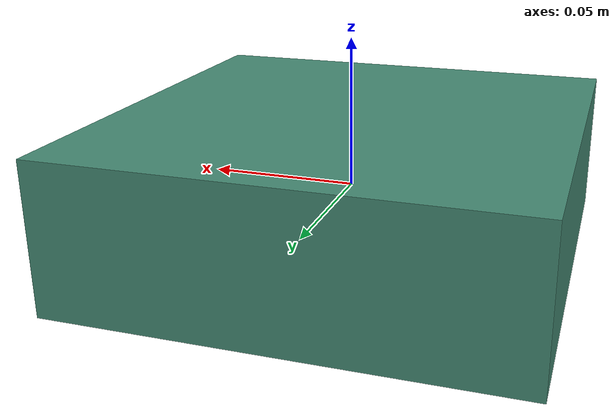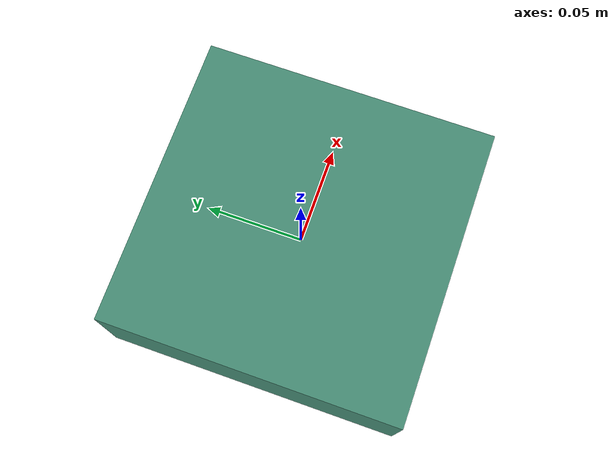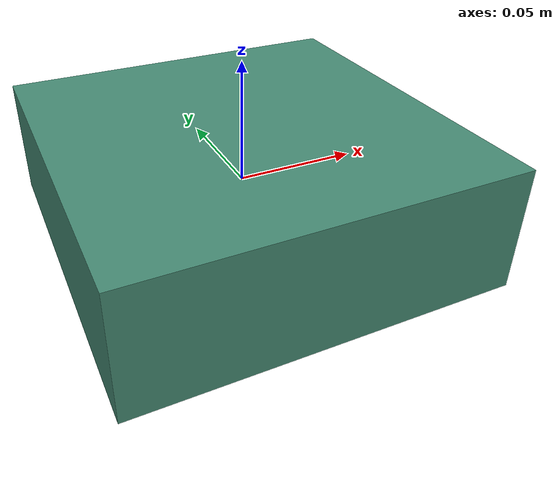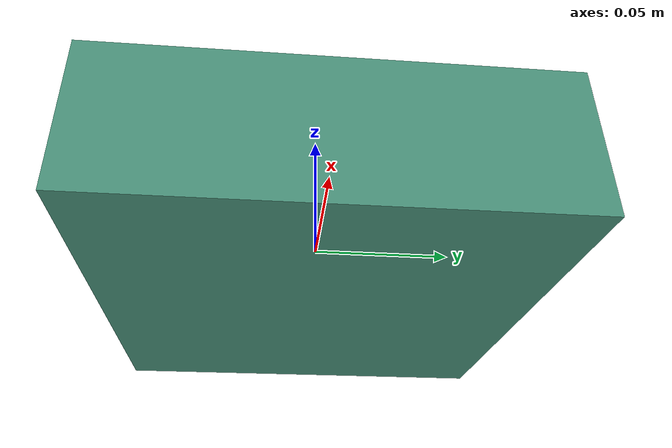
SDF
<?xml version="1.0"?>
<sdf version="1.7">
  <model name="box">
    <link name="box">
      <inertial>
        <mass>0.1</mass>
      </inertial>
      <visual name="base_link_box">
        <pose>-0.0 0.0 0.0 0.0 0.0 0.0</pose>
        <geometry>
          <box>
            <size>0.15 0.15 0.05</size>
          </box>
        </geometry>
        <material>
          <diffuse> 0.26953125 0.54296875 0.453125 1. </diffuse>
        </material>
      </visual>
      <collision name="box_collision">
        <geometry>
          <box>
            <size>0.15 0.15 0.05</size>
          </box>
        </geometry>
      </collision>
      <collision name="point_collision1">
        <pose>0.075 0.075 0.025 0 0 0 </pose>
        <geometry>
          <sphere>
            <radius>1e-7</radius>
          </sphere>
        </geometry>
      </collision>
      <collision name="point_collision2">
        <pose>0.075 -0.075 0.025 0 0 0 </pose>
        <geometry>
          <sphere>
            <radius>1e-7</radius>
          </sphere>
        </geometry>
      </collision>
      <collision name="point_collision3">
        <pose>-0.075 0.075 0.025 0 0 0 </pose>
        <geometry>
          <sphere>
            <radius>1e-7</radius>
          </sphere>
        </geometry>
      </collision>
      <collision name="point_collision4">
        <pose>-0.075 -0.075 0.025 0 0 0 </pose>
        <geometry>
          <sphere>
            <radius>1e-7</radius>
          </sphere>
        </geometry>
      </collision>
      <collision name="point_collision5">
        <pose>0.075 0.075 -0.025 0 0 0 </pose>
        <geometry>
          <sphere>
            <radius>1e-7</radius>
          </sphere>
        </geometry>
      </collision>
      <collision name="point_collision6">
        <pose>0.075 -0.075 -0.025 0 0 0 </pose>
        <geometry>
          <sphere>
            <radius>1e-7</radius>
          </sphere>
        </geometry>
      </collision>
      <collision name="point_collision7">
        <pose>-0.075 0.075 -0.025 0 0 0 </pose>
        <geometry>
          <sphere>
            <radius>1e-7</radius>
          </sphere>
        </geometry>
      </collision>
      <collision name="point_collision8">
        <pose>-0.075 -0.075 -0.025 0 0 0 </pose>
        <geometry>
          <sphere>
            <radius>1e-7</radius>
          </sphere>
        </geometry>
      </collision>
    </link>
  </model>
</sdf>
